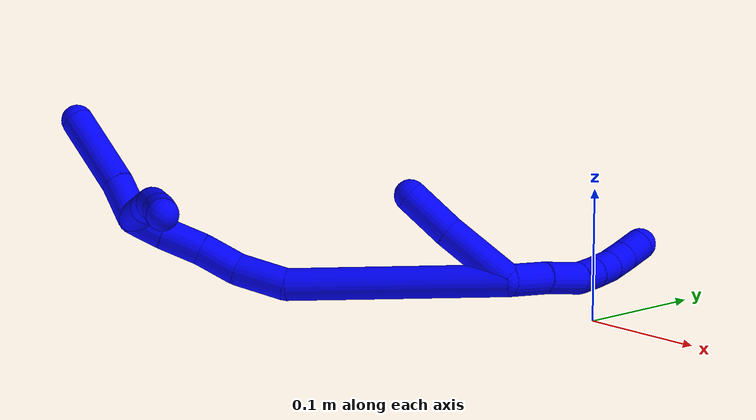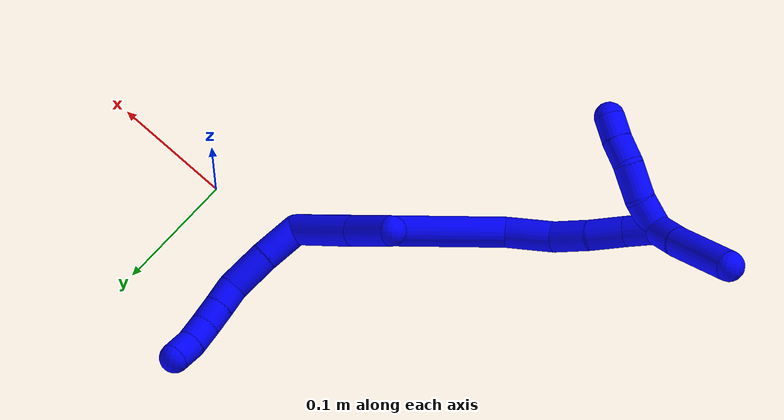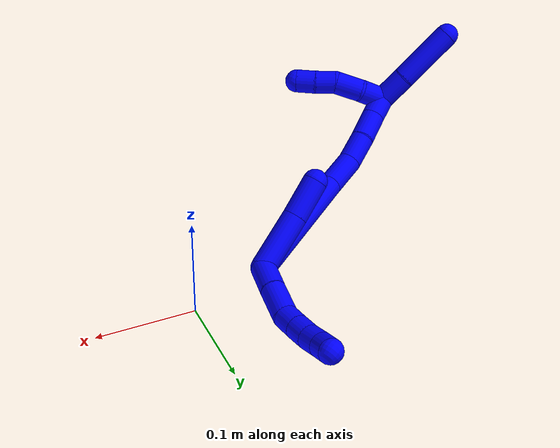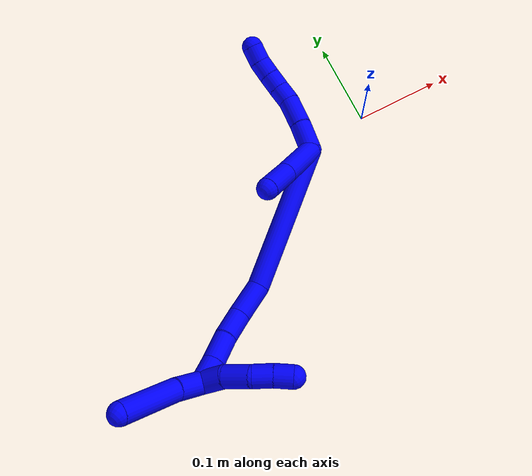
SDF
<sdf version="1.7">
 <world name="default">
  <model name="photoneo_s_sensor">
   <static>1</static>
   <pose>0 0 2 1.57079 1.57079 3.14159</pose>
   <link name="link">
    <inertial><mass>0.1</mass></inertial>
    <sensor name="sensor" type="depth">
     <update_rate>30</update_rate>
     <camera>
      <horizontal_fov>1.22</horizontal_fov>
      <image><width>1920</width><height>1200</height><format>B8G8R8</format></image>
      <clip><near>0.1</near><far>4</far></clip>
      <depth_camera><output>points</output></depth_camera>
     </camera>
     <plugin name="camera_plugin" filename="libgazebo_ros_depth_camera.so">
      <baseline>0.2</baseline>
      <alwaysOn>1</alwaysOn>
      <updateRate>0.0</updateRate>
      <cameraName>camera_ir</cameraName>
      <imageTopicName>/camera/color/image_raw</imageTopicName>
      <cameraInfoTopicName>/camera/color/camera_info</cameraInfoTopicName>
      <depthImageTopicName>/camera/depth/image_raw</depthImageTopicName>
      <depthImageCameraInfoTopicName>/camera/depth/camera_info</depthImageCameraInfoTopicName>
      <pointCloudTopicName>/camera/depth/points</pointCloudTopicName>
      <frameName>fr_optical</frameName>
      <pointCloudCutoff>0.1</pointCloudCutoff>
      <pointCloudCutoffMax>2.0</pointCloudCutoffMax>
      <distortionK1>0</distortionK1>
      <distortionK2>0</distortionK2>
      <distortionK3>0</distortionK3>
      <distortionT1>0</distortionT1>
      <distortionT2>0</distortionT2>
      <CxPrime>0</CxPrime>
      <Cx>0</Cx>
      <Cy>0</Cy>
      <focalLength>0</focalLength>
      <hackBaseline>0</hackBaseline>
     </plugin>
    </sensor>
   </link>
  </model>
  <model name="bin">
   <static>1</static>
   <link name="bottom">
    <collision name="collision-bottom">
     <pose>0 0 -0.01 0 -0 0</pose>
     <geometry><box><size>0.8 0.6 0.02</size></box></geometry>
     <surface>
      <friction><ode><mu>100</mu><mu2>100</mu2></ode></friction>
      <contact><collide_bitmask>65535</collide_bitmask></contact>
     </surface>
    </collision>
   </link>
   <link name="west_wall">
    <collision name="collision-west_wall">
     <pose>-0.41 0 0.1 0 -0 0</pose>
     <geometry><box><size>0.02 0.6 0.2</size></box></geometry>
     <surface>
      <friction><ode><mu>100</mu><mu2>100</mu2></ode></friction>
      <contact><collide_bitmask>65535</collide_bitmask></contact>
     </surface>
    </collision>
   </link>
   <link name="east_wall">
    <collision name="collision-east_wall">
     <pose>0.41 0 0.1 0 -0 0</pose>
     <geometry><box><size>0.02 0.6 0.2</size></box></geometry>
     <surface>
      <friction><ode><mu>100</mu><mu2>100</mu2></ode></friction>
      <contact><collide_bitmask>65535</collide_bitmask></contact>
     </surface>
    </collision>
   </link>
   <link name="south_wall">
    <collision name="collision-south_wall">
     <pose>0 -0.31 0.1 0 -0 0</pose>
     <geometry><box><size>0.8 0.02 0.2</size></box></geometry>
     <surface>
      <friction><ode><mu>100</mu><mu2>100</mu2></ode></friction>
      <contact><collide_bitmask>65535</collide_bitmask></contact>
     </surface>
    </collision>
   </link>
   <link name="north_wall">
    <collision name="collision-north_wall">
     <pose>0 0.31 0.1 0 -0 0</pose>
     <geometry><box><size>0.8 0.02 0.2</size></box></geometry>
     <surface>
      <friction><ode><mu>100</mu><mu2>100</mu2></ode></friction>
      <contact><collide_bitmask>65535</collide_bitmask></contact>
     </surface>
    </collision>
   </link>
  </model>
  <model name="1">
   <static>0</static>
   <link name="1">
    <collision name="collision-cylinder-e_1_2_8">
     <pose>0.005035 0.013945 -0.008528 -2.11965 0.298806 -0.52461</pose>
     <geometry><cylinder><radius>0.0125</radius><length>0.034207</length></cylinder></geometry>
     <surface>
      <friction><ode><mu>1.16</mu><mu2>1.16</mu2><slip1>0</slip1><slip2>0</slip2></ode></friction>
      <contact><ode><kp>1e+06</kp><kd>1</kd><max_vel>0</max_vel><min_depth>0.001</min_depth></ode></contact>
     </surface>
    </collision>
    <visual name="visual-cylinder-e_1_2_8">
     <pose>0.005035 0.013945 -0.008528 -2.11965 0.298806 -0.52461</pose>
     <geometry><cylinder><radius>0.0125</radius><length>0.034207</length></cylinder></geometry>
     <material><ambient>0 0 1 1</ambient></material>
    </visual>
    <collision name="collision-cylinder-e_2_8_9">
     <pose>0.01379 0.042789 -0.025749 -2.09896 0.212399 -0.367051</pose>
     <geometry><cylinder><radius>0.0125</radius><length>0.035293</length></cylinder></geometry>
     <surface>
      <friction><ode><mu>1.16</mu><mu2>1.16</mu2><slip1>0</slip1><slip2>0</slip2></ode></friction>
      <contact><ode><kp>1e+06</kp><kd>1</kd><max_vel>0</max_vel><min_depth>0.001</min_depth></ode></contact>
     </surface>
    </collision>
    <visual name="visual-cylinder-e_2_8_9">
     <pose>0.01379 0.042789 -0.025749 -2.09896 0.212399 -0.367051</pose>
     <geometry><cylinder><radius>0.0125</radius><length>0.035293</length></cylinder></geometry>
     <material><ambient>0 0 1 1</ambient></material>
    </visual>
    <collision name="collision-cylinder-e_3_9_10">
     <pose>0.020378 0.067071 -0.036679 -1.80493 0.28905 -0.364575</pose>
     <geometry><cylinder><radius>0.0125</radius><length>0.020127</length></cylinder></geometry>
     <surface>
      <friction><ode><mu>1.16</mu><mu2>1.16</mu2><slip1>0</slip1><slip2>0</slip2></ode></friction>
      <contact><ode><kp>1e+06</kp><kd>1</kd><max_vel>0</max_vel><min_depth>0.001</min_depth></ode></contact>
     </surface>
    </collision>
    <visual name="visual-cylinder-e_3_9_10">
     <pose>0.020378 0.067071 -0.036679 -1.80493 0.28905 -0.364575</pose>
     <geometry><cylinder><radius>0.0125</radius><length>0.020127</length></cylinder></geometry>
     <material><ambient>0 0 1 1</ambient></material>
    </visual>
    <collision name="collision-cylinder-e_4_10_11">
     <pose>0.026603 0.085694 -0.040949 -1.7872 0.340872 -0.42174</pose>
     <geometry><cylinder><radius>0.0125</radius><length>0.020077</length></cylinder></geometry>
     <surface>
      <friction><ode><mu>1.16</mu><mu2>1.16</mu2><slip1>0</slip1><slip2>0</slip2></ode></friction>
      <contact><ode><kp>1e+06</kp><kd>1</kd><max_vel>0</max_vel><min_depth>0.001</min_depth></ode></contact>
     </surface>
    </collision>
    <visual name="visual-cylinder-e_4_10_11">
     <pose>0.026603 0.085694 -0.040949 -1.7872 0.340872 -0.42174</pose>
     <geometry><cylinder><radius>0.0125</radius><length>0.020077</length></cylinder></geometry>
     <material><ambient>0 0 1 1</ambient></material>
    </visual>
    <collision name="collision-cylinder-e_5_11_12">
     <pose>0.034408 0.103882 -0.044257 -1.71251 0.457462 -0.524396</pose>
     <geometry><cylinder><radius>0.0125</radius><length>0.020147</length></cylinder></geometry>
     <surface>
      <friction><ode><mu>1.16</mu><mu2>1.16</mu2><slip1>0</slip1><slip2>0</slip2></ode></friction>
      <contact><ode><kp>1e+06</kp><kd>1</kd><max_vel>0</max_vel><min_depth>0.001</min_depth></ode></contact>
     </surface>
    </collision>
    <visual name="visual-cylinder-e_5_11_12">
     <pose>0.034408 0.103882 -0.044257 -1.71251 0.457462 -0.524396</pose>
     <geometry><cylinder><radius>0.0125</radius><length>0.020147</length></cylinder></geometry>
     <material><ambient>0 0 1 1</ambient></material>
    </visual>
    <collision name="collision-cylinder-e_6_12_6">
     <pose>0.044867 0.120723 -0.047285 -1.7892 0.639126 -0.782295</pose>
     <geometry><cylinder><radius>0.0125</radius><length>0.020149</length></cylinder></geometry>
     <surface>
      <friction><ode><mu>1.16</mu><mu2>1.16</mu2><slip1>0</slip1><slip2>0</slip2></ode></friction>
      <contact><ode><kp>1e+06</kp><kd>1</kd><max_vel>0</max_vel><min_depth>0.001</min_depth></ode></contact>
     </surface>
    </collision>
    <visual name="visual-cylinder-e_6_12_6">
     <pose>0.044867 0.120723 -0.047285 -1.7892 0.639126 -0.782295</pose>
     <geometry><cylinder><radius>0.0125</radius><length>0.020149</length></cylinder></geometry>
     <material><ambient>0 0 1 1</ambient></material>
    </visual>
    <collision name="collision-cylinder-e_1_2_13">
     <pose>0.003406 -0.001241 0.029401 0.042201 0.115247 0.002435</pose>
     <geometry><cylinder><radius>0.0125</radius><length>0.059247</length></cylinder></geometry>
     <surface>
      <friction><ode><mu>1.16</mu><mu2>1.16</mu2><slip1>0</slip1><slip2>0</slip2></ode></friction>
      <contact><ode><kp>1e+06</kp><kd>1</kd><max_vel>0</max_vel><min_depth>0.001</min_depth></ode></contact>
     </surface>
    </collision>
    <visual name="visual-cylinder-e_1_2_13">
     <pose>0.003406 -0.001241 0.029401 0.042201 0.115247 0.002435</pose>
     <geometry><cylinder><radius>0.0125</radius><length>0.059247</length></cylinder></geometry>
     <material><ambient>0 0 1 1</ambient></material>
    </visual>
    <collision name="collision-cylinder-e_2_13_5">
     <pose>0.010595 -0.003451 0.078801 0.048366 0.186694 0.004529</pose>
     <geometry><cylinder><radius>0.0125</radius><length>0.040753</length></cylinder></geometry>
     <surface>
      <friction><ode><mu>1.16</mu><mu2>1.16</mu2><slip1>0</slip1><slip2>0</slip2></ode></friction>
      <contact><ode><kp>1e+06</kp><kd>1</kd><max_vel>0</max_vel><min_depth>0.001</min_depth></ode></contact>
     </surface>
    </collision>
    <visual name="visual-cylinder-e_2_13_5">
     <pose>0.010595 -0.003451 0.078801 0.048366 0.186694 0.004529</pose>
     <geometry><cylinder><radius>0.0125</radius><length>0.040753</length></cylinder></geometry>
     <material><ambient>0 0 1 1</ambient></material>
    </visual>
    <collision name="collision-cylinder-e_1_2_14">
     <pose>-0.044585 -0.019685 0.069784 0.274938 -0.551303 -0.07822</pose>
     <geometry><cylinder><radius>0.0125</radius><length>0.170236</length></cylinder></geometry>
     <surface>
      <friction><ode><mu>1.16</mu><mu2>1.16</mu2><slip1>0</slip1><slip2>0</slip2></ode></friction>
      <contact><ode><kp>1e+06</kp><kd>1</kd><max_vel>0</max_vel><min_depth>0.001</min_depth></ode></contact>
     </surface>
    </collision>
    <visual name="visual-cylinder-e_1_2_14">
     <pose>-0.044585 -0.019685 0.069784 0.274938 -0.551303 -0.07822</pose>
     <geometry><cylinder><radius>0.0125</radius><length>0.170236</length></cylinder></geometry>
     <material><ambient>0 0 1 1</ambient></material>
    </visual>
    <collision name="collision-cylinder-e_2_14_15">
     <pose>-0.094488 -0.040965 0.158944 0.082142 -0.267032 -0.011039</pose>
     <geometry><cylinder><radius>0.0125</radius><length>0.040311</length></cylinder></geometry>
     <surface>
      <friction><ode><mu>1.16</mu><mu2>1.16</mu2><slip1>0</slip1><slip2>0</slip2></ode></friction>
      <contact><ode><kp>1e+06</kp><kd>1</kd><max_vel>0</max_vel><min_depth>0.001</min_depth></ode></contact>
     </surface>
    </collision>
    <visual name="visual-cylinder-e_2_14_15">
     <pose>-0.094488 -0.040965 0.158944 0.082142 -0.267032 -0.011039</pose>
     <geometry><cylinder><radius>0.0125</radius><length>0.040311</length></cylinder></geometry>
     <material><ambient>0 0 1 1</ambient></material>
    </visual>
    <collision name="collision-cylinder-e_3_15_16">
     <pose>-0.100468 -0.045058 0.193946 0.15854 -0.04179 -0.00332</pose>
     <geometry><cylinder><radius>0.0125</radius><length>0.031679</length></cylinder></geometry>
     <surface>
      <friction><ode><mu>1.16</mu><mu2>1.16</mu2><slip1>0</slip1><slip2>0</slip2></ode></friction>
      <contact><ode><kp>1e+06</kp><kd>1</kd><max_vel>0</max_vel><min_depth>0.001</min_depth></ode></contact>
     </surface>
    </collision>
    <visual name="visual-cylinder-e_3_15_16">
     <pose>-0.100468 -0.045058 0.193946 0.15854 -0.04179 -0.00332</pose>
     <geometry><cylinder><radius>0.0125</radius><length>0.031679</length></cylinder></geometry>
     <material><ambient>0 0 1 1</ambient></material>
    </visual>
    <collision name="collision-cylinder-e_4_16_17">
     <pose>-0.103178 -0.051388 0.224849 0.245743 -0.129375 -0.015999</pose>
     <geometry><cylinder><radius>0.0125</radius><length>0.031763</length></cylinder></geometry>
     <surface>
      <friction><ode><mu>1.16</mu><mu2>1.16</mu2><slip1>0</slip1><slip2>0</slip2></ode></friction>
      <contact><ode><kp>1e+06</kp><kd>1</kd><max_vel>0</max_vel><min_depth>0.001</min_depth></ode></contact>
     </surface>
    </collision>
    <visual name="visual-cylinder-e_4_16_17">
     <pose>-0.103178 -0.051388 0.224849 0.245743 -0.129375 -0.015999</pose>
     <geometry><cylinder><radius>0.0125</radius><length>0.031763</length></cylinder></geometry>
     <material><ambient>0 0 1 1</ambient></material>
    </visual>
    <collision name="collision-cylinder-e_5_17_1">
     <pose>-0.106112 -0.057825 0.252836 0.202208 -0.06805 -0.006906</pose>
     <geometry><cylinder><radius>0.0125</radius><length>0.026011</length></cylinder></geometry>
     <surface>
      <friction><ode><mu>1.16</mu><mu2>1.16</mu2><slip1>0</slip1><slip2>0</slip2></ode></friction>
      <contact><ode><kp>1e+06</kp><kd>1</kd><max_vel>0</max_vel><min_depth>0.001</min_depth></ode></contact>
     </surface>
    </collision>
    <visual name="visual-cylinder-e_5_17_1">
     <pose>-0.106112 -0.057825 0.252836 0.202208 -0.06805 -0.006906</pose>
     <geometry><cylinder><radius>0.0125</radius><length>0.026011</length></cylinder></geometry>
     <material><ambient>0 0 1 1</ambient></material>
    </visual>
    <collision name="collision-cylinder-e_1_1_18">
     <pose>-0.09799 -0.069579 0.26013 2.1054 0.702824 1.14311</pose>
     <geometry><cylinder><radius>0.0125</radius><length>0.027865</length></cylinder></geometry>
     <surface>
      <friction><ode><mu>1.16</mu><mu2>1.16</mu2><slip1>0</slip1><slip2>0</slip2></ode></friction>
      <contact><ode><kp>1e+06</kp><kd>1</kd><max_vel>0</max_vel><min_depth>0.001</min_depth></ode></contact>
     </surface>
    </collision>
    <visual name="visual-cylinder-e_1_1_18">
     <pose>-0.09799 -0.069579 0.26013 2.1054 0.702824 1.14311</pose>
     <geometry><cylinder><radius>0.0125</radius><length>0.027865</length></cylinder></geometry>
     <material><ambient>0 0 1 1</ambient></material>
    </visual>
    <collision name="collision-cylinder-e_2_18_19">
     <pose>-0.082494 -0.090918 0.249471 1.97695 0.454897 0.676004</pose>
     <geometry><cylinder><radius>0.0125</radius><length>0.029547</length></cylinder></geometry>
     <surface>
      <friction><ode><mu>1.16</mu><mu2>1.16</mu2><slip1>0</slip1><slip2>0</slip2></ode></friction>
      <contact><ode><kp>1e+06</kp><kd>1</kd><max_vel>0</max_vel><min_depth>0.001</min_depth></ode></contact>
     </surface>
    </collision>
    <visual name="visual-cylinder-e_2_18_19">
     <pose>-0.082494 -0.090918 0.249471 1.97695 0.454897 0.676004</pose>
     <geometry><cylinder><radius>0.0125</radius><length>0.029547</length></cylinder></geometry>
     <material><ambient>0 0 1 1</ambient></material>
    </visual>
    <collision name="collision-cylinder-e_3_19_20">
     <pose>-0.073813 -0.11182 0.237991 2.19216 0.201604 0.388656</pose>
     <geometry><cylinder><radius>0.0125</radius><length>0.021869</length></cylinder></geometry>
     <surface>
      <friction><ode><mu>1.16</mu><mu2>1.16</mu2><slip1>0</slip1><slip2>0</slip2></ode></friction>
      <contact><ode><kp>1e+06</kp><kd>1</kd><max_vel>0</max_vel><min_depth>0.001</min_depth></ode></contact>
     </surface>
    </collision>
    <visual name="visual-cylinder-e_3_19_20">
     <pose>-0.073813 -0.11182 0.237991 2.19216 0.201604 0.388656</pose>
     <geometry><cylinder><radius>0.0125</radius><length>0.021869</length></cylinder></geometry>
     <material><ambient>0 0 1 1</ambient></material>
    </visual>
    <collision name="collision-cylinder-e_4_20_4">
     <pose>-0.069944 -0.129398 0.22667 2.09145 0.162841 0.279874</pose>
     <geometry><cylinder><radius>0.0125</radius><length>0.020719</length></cylinder></geometry>
     <surface>
      <friction><ode><mu>1.16</mu><mu2>1.16</mu2><slip1>0</slip1><slip2>0</slip2></ode></friction>
      <contact><ode><kp>1e+06</kp><kd>1</kd><max_vel>0</max_vel><min_depth>0.001</min_depth></ode></contact>
     </surface>
    </collision>
    <visual name="visual-cylinder-e_4_20_4">
     <pose>-0.069944 -0.129398 0.22667 2.09145 0.162841 0.279874</pose>
     <geometry><cylinder><radius>0.0125</radius><length>0.020719</length></cylinder></geometry>
     <material><ambient>0 0 1 1</ambient></material>
    </visual>
    <collision name="collision-cylinder-e_1_1_21">
     <pose>-0.100843 -0.054472 0.280087 -0.388943 0.373235 -0.074344</pose>
     <geometry><cylinder><radius>0.0125</radius><length>0.033751</length></cylinder></geometry>
     <surface>
      <friction><ode><mu>1.16</mu><mu2>1.16</mu2><slip1>0</slip1><slip2>0</slip2></ode></friction>
      <contact><ode><kp>1e+06</kp><kd>1</kd><max_vel>0</max_vel><min_depth>0.001</min_depth></ode></contact>
     </surface>
    </collision>
    <visual name="visual-cylinder-e_1_1_21">
     <pose>-0.100843 -0.054472 0.280087 -0.388943 0.373235 -0.074344</pose>
     <geometry><cylinder><radius>0.0125</radius><length>0.033751</length></cylinder></geometry>
     <material><ambient>0 0 1 1</ambient></material>
    </visual>
    <collision name="collision-cylinder-e_2_21_3">
     <pose>-0.085605 -0.03892 0.325002 -0.305916 0.277812 -0.043099</pose>
     <geometry><cylinder><radius>0.0125</radius><length>0.066249</length></cylinder></geometry>
     <surface>
      <friction><ode><mu>1.16</mu><mu2>1.16</mu2><slip1>0</slip1><slip2>0</slip2></ode></friction>
      <contact><ode><kp>1e+06</kp><kd>1</kd><max_vel>0</max_vel><min_depth>0.001</min_depth></ode></contact>
     </surface>
    </collision>
    <visual name="visual-cylinder-e_2_21_3">
     <pose>-0.085605 -0.03892 0.325002 -0.305916 0.277812 -0.043099</pose>
     <geometry><cylinder><radius>0.0125</radius><length>0.066249</length></cylinder></geometry>
     <material><ambient>0 0 1 1</ambient></material>
    </visual>
    <collision name="collision-sphere-3">
     <pose>-0.076521 -0.029327 0.355378 0 -0 0</pose>
     <geometry><sphere><radius>0.0125</radius></sphere></geometry>
     <surface>
      <friction><ode><mu>1.16</mu><mu2>1.16</mu2><slip1>0</slip1><slip2>0</slip2></ode></friction>
      <contact><ode><kp>1e+06</kp><kd>1</kd><max_vel>0</max_vel><min_depth>0.001</min_depth></ode></contact>
     </surface>
    </collision>
    <visual name="visual-sphere-3">
     <pose>-0.076521 -0.029327 0.355378 0 -0 0</pose>
     <geometry><sphere><radius>0.0125</radius></sphere></geometry>
     <material><ambient>0 0 1 1</ambient></material>
    </visual>
    <collision name="collision-sphere-21">
     <pose>-0.09469 -0.048514 0.294627 0 -0 0</pose>
     <geometry><sphere><radius>0.0125</radius></sphere></geometry>
     <surface>
      <friction><ode><mu>1.16</mu><mu2>1.16</mu2><slip1>0</slip1><slip2>0</slip2></ode></friction>
      <contact><ode><kp>1e+06</kp><kd>1</kd><max_vel>0</max_vel><min_depth>0.001</min_depth></ode></contact>
     </surface>
    </collision>
    <visual name="visual-sphere-21">
     <pose>-0.09469 -0.048514 0.294627 0 -0 0</pose>
     <geometry><sphere><radius>0.0125</radius></sphere></geometry>
     <material><ambient>0 0 1 1</ambient></material>
    </visual>
    <collision name="collision-sphere-4">
     <pose>-0.068265 -0.138266 0.221585 0 -0 0</pose>
     <geometry><sphere><radius>0.0125</radius></sphere></geometry>
     <surface>
      <friction><ode><mu>1.16</mu><mu2>1.16</mu2><slip1>0</slip1><slip2>0</slip2></ode></friction>
      <contact><ode><kp>1e+06</kp><kd>1</kd><max_vel>0</max_vel><min_depth>0.001</min_depth></ode></contact>
     </surface>
    </collision>
    <visual name="visual-sphere-4">
     <pose>-0.068265 -0.138266 0.221585 0 -0 0</pose>
     <geometry><sphere><radius>0.0125</radius></sphere></geometry>
     <material><ambient>0 0 1 1</ambient></material>
    </visual>
    <collision name="collision-sphere-20">
     <pose>-0.071624 -0.12053 0.231755 0 -0 0</pose>
     <geometry><sphere><radius>0.0125</radius></sphere></geometry>
     <surface>
      <friction><ode><mu>1.16</mu><mu2>1.16</mu2><slip1>0</slip1><slip2>0</slip2></ode></friction>
      <contact><ode><kp>1e+06</kp><kd>1</kd><max_vel>0</max_vel><min_depth>0.001</min_depth></ode></contact>
     </surface>
    </collision>
    <visual name="visual-sphere-20">
     <pose>-0.071624 -0.12053 0.231755 0 -0 0</pose>
     <geometry><sphere><radius>0.0125</radius></sphere></geometry>
     <material><ambient>0 0 1 1</ambient></material>
    </visual>
    <collision name="collision-sphere-12">
     <pose>0.038857 0.112829 -0.045533 0 -0 0</pose>
     <geometry><sphere><radius>0.0125</radius></sphere></geometry>
     <surface>
      <friction><ode><mu>1.16</mu><mu2>1.16</mu2><slip1>0</slip1><slip2>0</slip2></ode></friction>
      <contact><ode><kp>1e+06</kp><kd>1</kd><max_vel>0</max_vel><min_depth>0.001</min_depth></ode></contact>
     </surface>
    </collision>
    <visual name="visual-sphere-12">
     <pose>0.038857 0.112829 -0.045533 0 -0 0</pose>
     <geometry><sphere><radius>0.0125</radius></sphere></geometry>
     <material><ambient>0 0 1 1</ambient></material>
    </visual>
    <collision name="collision-sphere-11">
     <pose>0.029959 0.094935 -0.04298 0 -0 0</pose>
     <geometry><sphere><radius>0.0125</radius></sphere></geometry>
     <surface>
      <friction><ode><mu>1.16</mu><mu2>1.16</mu2><slip1>0</slip1><slip2>0</slip2></ode></friction>
      <contact><ode><kp>1e+06</kp><kd>1</kd><max_vel>0</max_vel><min_depth>0.001</min_depth></ode></contact>
     </surface>
    </collision>
    <visual name="visual-sphere-11">
     <pose>0.029959 0.094935 -0.04298 0 -0 0</pose>
     <geometry><sphere><radius>0.0125</radius></sphere></geometry>
     <material><ambient>0 0 1 1</ambient></material>
    </visual>
    <collision name="collision-sphere-10">
     <pose>0.023247 0.076454 -0.038917 0 -0 0</pose>
     <geometry><sphere><radius>0.0125</radius></sphere></geometry>
     <surface>
      <friction><ode><mu>1.16</mu><mu2>1.16</mu2><slip1>0</slip1><slip2>0</slip2></ode></friction>
      <contact><ode><kp>1e+06</kp><kd>1</kd><max_vel>0</max_vel><min_depth>0.001</min_depth></ode></contact>
     </surface>
    </collision>
    <visual name="visual-sphere-10">
     <pose>0.023247 0.076454 -0.038917 0 -0 0</pose>
     <geometry><sphere><radius>0.0125</radius></sphere></geometry>
     <material><ambient>0 0 1 1</ambient></material>
    </visual>
    <collision name="collision-sphere-9">
     <pose>0.01751 0.057688 -0.034442 0 -0 0</pose>
     <geometry><sphere><radius>0.0125</radius></sphere></geometry>
     <surface>
      <friction><ode><mu>1.16</mu><mu2>1.16</mu2><slip1>0</slip1><slip2>0</slip2></ode></friction>
      <contact><ode><kp>1e+06</kp><kd>1</kd><max_vel>0</max_vel><min_depth>0.001</min_depth></ode></contact>
     </surface>
    </collision>
    <visual name="visual-sphere-9">
     <pose>0.01751 0.057688 -0.034442 0 -0 0</pose>
     <geometry><sphere><radius>0.0125</radius></sphere></geometry>
     <material><ambient>0 0 1 1</ambient></material>
    </visual>
    <collision name="collision-sphere-2">
     <geometry><sphere><radius>0.0125</radius></sphere></geometry>
     <surface>
      <friction><ode><mu>1.16</mu><mu2>1.16</mu2><slip1>0</slip1><slip2>0</slip2></ode></friction>
      <contact><ode><kp>1e+06</kp><kd>1</kd><max_vel>0</max_vel><min_depth>0.001</min_depth></ode></contact>
     </surface>
    </collision>
    <visual name="visual-sphere-2">
     <geometry><sphere><radius>0.0125</radius></sphere></geometry>
     <material><ambient>0 0 1 1</ambient></material>
    </visual>
    <collision name="collision-sphere-19">
     <pose>-0.076003 -0.103109 0.244228 0 -0 0</pose>
     <geometry><sphere><radius>0.0125</radius></sphere></geometry>
     <surface>
      <friction><ode><mu>1.16</mu><mu2>1.16</mu2><slip1>0</slip1><slip2>0</slip2></ode></friction>
      <contact><ode><kp>1e+06</kp><kd>1</kd><max_vel>0</max_vel><min_depth>0.001</min_depth></ode></contact>
     </surface>
    </collision>
    <visual name="visual-sphere-19">
     <pose>-0.076003 -0.103109 0.244228 0 -0 0</pose>
     <geometry><sphere><radius>0.0125</radius></sphere></geometry>
     <material><ambient>0 0 1 1</ambient></material>
    </visual>
    <collision name="collision-sphere-8">
     <pose>0.01007 0.02789 -0.017056 0 -0 0</pose>
     <geometry><sphere><radius>0.0125</radius></sphere></geometry>
     <surface>
      <friction><ode><mu>1.16</mu><mu2>1.16</mu2><slip1>0</slip1><slip2>0</slip2></ode></friction>
      <contact><ode><kp>1e+06</kp><kd>1</kd><max_vel>0</max_vel><min_depth>0.001</min_depth></ode></contact>
     </surface>
    </collision>
    <visual name="visual-sphere-8">
     <pose>0.01007 0.02789 -0.017056 0 -0 0</pose>
     <geometry><sphere><radius>0.0125</radius></sphere></geometry>
     <material><ambient>0 0 1 1</ambient></material>
    </visual>
    <collision name="collision-sphere-6">
     <pose>0.050876 0.128617 -0.049037 0 -0 0</pose>
     <geometry><sphere><radius>0.0125</radius></sphere></geometry>
     <surface>
      <friction><ode><mu>1.16</mu><mu2>1.16</mu2><slip1>0</slip1><slip2>0</slip2></ode></friction>
      <contact><ode><kp>1e+06</kp><kd>1</kd><max_vel>0</max_vel><min_depth>0.001</min_depth></ode></contact>
     </surface>
    </collision>
    <visual name="visual-sphere-6">
     <pose>0.050876 0.128617 -0.049037 0 -0 0</pose>
     <geometry><sphere><radius>0.0125</radius></sphere></geometry>
     <material><ambient>0 0 1 1</ambient></material>
    </visual>
    <collision name="collision-sphere-13">
     <pose>0.006813 -0.002483 0.058802 0 -0 0</pose>
     <geometry><sphere><radius>0.0125</radius></sphere></geometry>
     <surface>
      <friction><ode><mu>1.16</mu><mu2>1.16</mu2><slip1>0</slip1><slip2>0</slip2></ode></friction>
      <contact><ode><kp>1e+06</kp><kd>1</kd><max_vel>0</max_vel><min_depth>0.001</min_depth></ode></contact>
     </surface>
    </collision>
    <visual name="visual-sphere-13">
     <pose>0.006813 -0.002483 0.058802 0 -0 0</pose>
     <geometry><sphere><radius>0.0125</radius></sphere></geometry>
     <material><ambient>0 0 1 1</ambient></material>
    </visual>
    <collision name="collision-sphere-5">
     <pose>0.014377 -0.004419 0.0988 0 -0 0</pose>
     <geometry><sphere><radius>0.0125</radius></sphere></geometry>
     <surface>
      <friction><ode><mu>1.16</mu><mu2>1.16</mu2><slip1>0</slip1><slip2>0</slip2></ode></friction>
      <contact><ode><kp>1e+06</kp><kd>1</kd><max_vel>0</max_vel><min_depth>0.001</min_depth></ode></contact>
     </surface>
    </collision>
    <visual name="visual-sphere-5">
     <pose>0.014377 -0.004419 0.0988 0 -0 0</pose>
     <geometry><sphere><radius>0.0125</radius></sphere></geometry>
     <material><ambient>0 0 1 1</ambient></material>
    </visual>
    <collision name="collision-sphere-14">
     <pose>-0.089169 -0.03937 0.139568 0 -0 0</pose>
     <geometry><sphere><radius>0.0125</radius></sphere></geometry>
     <surface>
      <friction><ode><mu>1.16</mu><mu2>1.16</mu2><slip1>0</slip1><slip2>0</slip2></ode></friction>
      <contact><ode><kp>1e+06</kp><kd>1</kd><max_vel>0</max_vel><min_depth>0.001</min_depth></ode></contact>
     </surface>
    </collision>
    <visual name="visual-sphere-14">
     <pose>-0.089169 -0.03937 0.139568 0 -0 0</pose>
     <geometry><sphere><radius>0.0125</radius></sphere></geometry>
     <material><ambient>0 0 1 1</ambient></material>
    </visual>
    <collision name="collision-sphere-15">
     <pose>-0.099806 -0.04256 0.178319 0 -0 0</pose>
     <geometry><sphere><radius>0.0125</radius></sphere></geometry>
     <surface>
      <friction><ode><mu>1.16</mu><mu2>1.16</mu2><slip1>0</slip1><slip2>0</slip2></ode></friction>
      <contact><ode><kp>1e+06</kp><kd>1</kd><max_vel>0</max_vel><min_depth>0.001</min_depth></ode></contact>
     </surface>
    </collision>
    <visual name="visual-sphere-15">
     <pose>-0.099806 -0.04256 0.178319 0 -0 0</pose>
     <geometry><sphere><radius>0.0125</radius></sphere></geometry>
     <material><ambient>0 0 1 1</ambient></material>
    </visual>
    <collision name="collision-sphere-16">
     <pose>-0.10113 -0.047557 0.209574 0 -0 0</pose>
     <geometry><sphere><radius>0.0125</radius></sphere></geometry>
     <surface>
      <friction><ode><mu>1.16</mu><mu2>1.16</mu2><slip1>0</slip1><slip2>0</slip2></ode></friction>
      <contact><ode><kp>1e+06</kp><kd>1</kd><max_vel>0</max_vel><min_depth>0.001</min_depth></ode></contact>
     </surface>
    </collision>
    <visual name="visual-sphere-16">
     <pose>-0.10113 -0.047557 0.209574 0 -0 0</pose>
     <geometry><sphere><radius>0.0125</radius></sphere></geometry>
     <material><ambient>0 0 1 1</ambient></material>
    </visual>
    <collision name="collision-sphere-17">
     <pose>-0.105227 -0.05522 0.240125 0 -0 0</pose>
     <geometry><sphere><radius>0.0125</radius></sphere></geometry>
     <surface>
      <friction><ode><mu>1.16</mu><mu2>1.16</mu2><slip1>0</slip1><slip2>0</slip2></ode></friction>
      <contact><ode><kp>1e+06</kp><kd>1</kd><max_vel>0</max_vel><min_depth>0.001</min_depth></ode></contact>
     </surface>
    </collision>
    <visual name="visual-sphere-17">
     <pose>-0.105227 -0.05522 0.240125 0 -0 0</pose>
     <geometry><sphere><radius>0.0125</radius></sphere></geometry>
     <material><ambient>0 0 1 1</ambient></material>
    </visual>
    <collision name="collision-sphere-1">
     <pose>-0.106996 -0.060431 0.265547 0 -0 0</pose>
     <geometry><sphere><radius>0.0125</radius></sphere></geometry>
     <surface>
      <friction><ode><mu>1.16</mu><mu2>1.16</mu2><slip1>0</slip1><slip2>0</slip2></ode></friction>
      <contact><ode><kp>1e+06</kp><kd>1</kd><max_vel>0</max_vel><min_depth>0.001</min_depth></ode></contact>
     </surface>
    </collision>
    <visual name="visual-sphere-1">
     <pose>-0.106996 -0.060431 0.265547 0 -0 0</pose>
     <geometry><sphere><radius>0.0125</radius></sphere></geometry>
     <material><ambient>0 0 1 1</ambient></material>
    </visual>
    <collision name="collision-sphere-18">
     <pose>-0.088985 -0.078726 0.254714 0 -0 0</pose>
     <geometry><sphere><radius>0.0125</radius></sphere></geometry>
     <surface>
      <friction><ode><mu>1.16</mu><mu2>1.16</mu2><slip1>0</slip1><slip2>0</slip2></ode></friction>
      <contact><ode><kp>1e+06</kp><kd>1</kd><max_vel>0</max_vel><min_depth>0.001</min_depth></ode></contact>
     </surface>
    </collision>
    <visual name="visual-sphere-18">
     <pose>-0.088985 -0.078726 0.254714 0 -0 0</pose>
     <geometry><sphere><radius>0.0125</radius></sphere></geometry>
     <material><ambient>0 0 1 1</ambient></material>
    </visual>
    <inertial>
     <pose>-0.045455 -0.019154 0.125336 0 -0 0</pose>
     <mass>0.75</mass>
     <inertia>
      <ixx>0.000419</ixx>
      <ixy>0</ixy>
      <ixz>0</ixz>
      <iyy>0.000446</iyy>
      <iyz>0</iyz>
      <izz>0.000313</izz>
     </inertia>
    </inertial>
   </link>
   <pose>-0.076487 -0.013611 0.019444 -0.246875 -1.06232 0.714408</pose>
  </model>
 </world>
</sdf>
